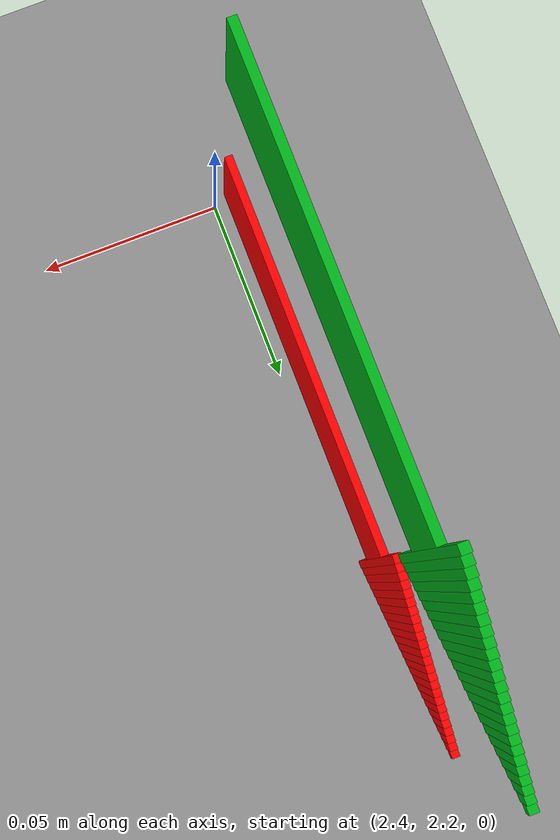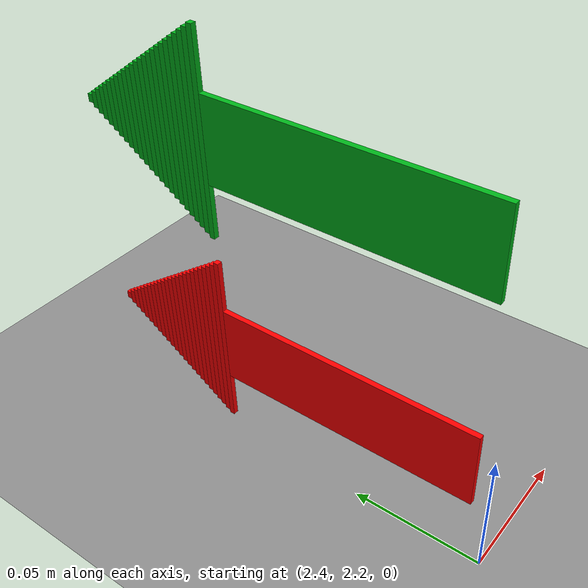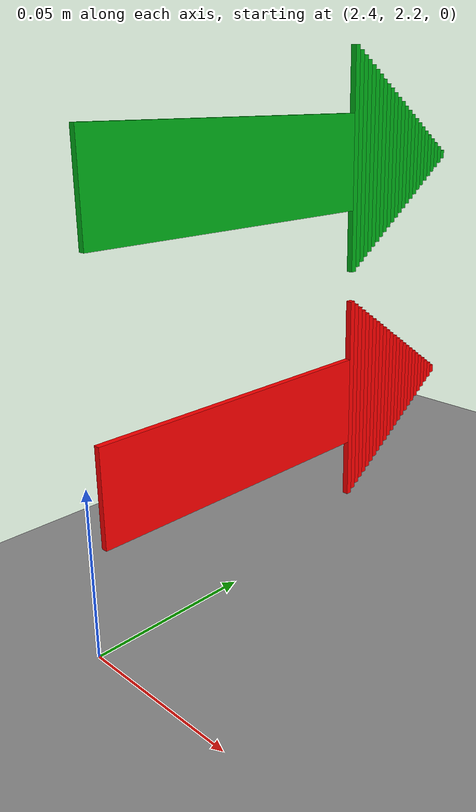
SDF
<sdf version="1.9">
 <world name="ros2_world">
  <model name="ground_plane">
   <static>true</static>
   <link name="link">
    <collision name="collision">
     <geometry><plane><normal>0 0 1</normal><size>30 30</size></plane></geometry>
    </collision>
    <visual name="visual">
     <geometry><plane><normal>0 0 1</normal><size>30 30</size></plane></geometry>
     <material><ambient>0.55 0.55 0.55 1</ambient><diffuse>0.55 0.55 0.55 1</diffuse></material>
    </visual>
   </link>
  </model>
  <model name="flechas">
   <static>true</static>
   <link name="flecha_8">
    <pose>2.3985 2.28 0.125 0 0 1.5708</pose>
    <visual name="p0">
     <pose>-0.025 0 0 0 0 0</pose>
     <geometry><box><size>0.1 0.002 0.03</size></box></geometry>
     <material><ambient>0 0.7 0.1 1</ambient><diffuse>0 0.7 0.1 1</diffuse></material>
    </visual>
    <visual name="p1">
     <pose>0.026 0 0 0 0 0</pose>
     <geometry><box><size>0.002 0.002 0.07</size></box></geometry>
     <material><ambient>0 0.7 0.1 1</ambient><diffuse>0 0.7 0.1 1</diffuse></material>
    </visual>
    <visual name="p2">
     <pose>0.028 0 0 0 0 0</pose>
     <geometry><box><size>0.002 0.002 0.0672</size></box></geometry>
     <material><ambient>0 0.7 0.1 1</ambient><diffuse>0 0.7 0.1 1</diffuse></material>
    </visual>
    <visual name="p3">
     <pose>0.03 0 0 0 0 0</pose>
     <geometry><box><size>0.002 0.002 0.0644</size></box></geometry>
     <material><ambient>0 0.7 0.1 1</ambient><diffuse>0 0.7 0.1 1</diffuse></material>
    </visual>
    <visual name="p4">
     <pose>0.032 0 0 0 0 0</pose>
     <geometry><box><size>0.002 0.002 0.0616</size></box></geometry>
     <material><ambient>0 0.7 0.1 1</ambient><diffuse>0 0.7 0.1 1</diffuse></material>
    </visual>
    <visual name="p5">
     <pose>0.034 0 0 0 0 0</pose>
     <geometry><box><size>0.002 0.002 0.0588</size></box></geometry>
     <material><ambient>0 0.7 0.1 1</ambient><diffuse>0 0.7 0.1 1</diffuse></material>
    </visual>
    <visual name="p6">
     <pose>0.036 0 0 0 0 0</pose>
     <geometry><box><size>0.002 0.002 0.056</size></box></geometry>
     <material><ambient>0 0.7 0.1 1</ambient><diffuse>0 0.7 0.1 1</diffuse></material>
    </visual>
    <visual name="p7">
     <pose>0.038 0 0 0 0 0</pose>
     <geometry><box><size>0.002 0.002 0.0532</size></box></geometry>
     <material><ambient>0 0.7 0.1 1</ambient><diffuse>0 0.7 0.1 1</diffuse></material>
    </visual>
    <visual name="p8">
     <pose>0.04 0 0 0 0 0</pose>
     <geometry><box><size>0.002 0.002 0.0504</size></box></geometry>
     <material><ambient>0 0.7 0.1 1</ambient><diffuse>0 0.7 0.1 1</diffuse></material>
    </visual>
    <visual name="p9">
     <pose>0.042 0 0 0 0 0</pose>
     <geometry><box><size>0.002 0.002 0.0476</size></box></geometry>
     <material><ambient>0 0.7 0.1 1</ambient><diffuse>0 0.7 0.1 1</diffuse></material>
    </visual>
    <visual name="p10">
     <pose>0.044 0 0 0 0 0</pose>
     <geometry><box><size>0.002 0.002 0.0448</size></box></geometry>
     <material><ambient>0 0.7 0.1 1</ambient><diffuse>0 0.7 0.1 1</diffuse></material>
    </visual>
    <visual name="p11">
     <pose>0.046 0 0 0 0 0</pose>
     <geometry><box><size>0.002 0.002 0.042</size></box></geometry>
     <material><ambient>0 0.7 0.1 1</ambient><diffuse>0 0.7 0.1 1</diffuse></material>
    </visual>
    <visual name="p12">
     <pose>0.048 0 0 0 0 0</pose>
     <geometry><box><size>0.002 0.002 0.0392</size></box></geometry>
     <material><ambient>0 0.7 0.1 1</ambient><diffuse>0 0.7 0.1 1</diffuse></material>
    </visual>
    <visual name="p13">
     <pose>0.05 0 0 0 0 0</pose>
     <geometry><box><size>0.002 0.002 0.0364</size></box></geometry>
     <material><ambient>0 0.7 0.1 1</ambient><diffuse>0 0.7 0.1 1</diffuse></material>
    </visual>
    <visual name="p14">
     <pose>0.052 0 0 0 0 0</pose>
     <geometry><box><size>0.002 0.002 0.0336</size></box></geometry>
     <material><ambient>0 0.7 0.1 1</ambient><diffuse>0 0.7 0.1 1</diffuse></material>
    </visual>
    <visual name="p15">
     <pose>0.054 0 0 0 0 0</pose>
     <geometry><box><size>0.002 0.002 0.0308</size></box></geometry>
     <material><ambient>0 0.7 0.1 1</ambient><diffuse>0 0.7 0.1 1</diffuse></material>
    </visual>
    <visual name="p16">
     <pose>0.056 0 0 0 0 0</pose>
     <geometry><box><size>0.002 0.002 0.028</size></box></geometry>
     <material><ambient>0 0.7 0.1 1</ambient><diffuse>0 0.7 0.1 1</diffuse></material>
    </visual>
    <visual name="p17">
     <pose>0.058 0 0 0 0 0</pose>
     <geometry><box><size>0.002 0.002 0.0252</size></box></geometry>
     <material><ambient>0 0.7 0.1 1</ambient><diffuse>0 0.7 0.1 1</diffuse></material>
    </visual>
    <visual name="p18">
     <pose>0.06 0 0 0 0 0</pose>
     <geometry><box><size>0.002 0.002 0.0224</size></box></geometry>
     <material><ambient>0 0.7 0.1 1</ambient><diffuse>0 0.7 0.1 1</diffuse></material>
    </visual>
    <visual name="p19">
     <pose>0.062 0 0 0 0 0</pose>
     <geometry><box><size>0.002 0.002 0.0196</size></box></geometry>
     <material><ambient>0 0.7 0.1 1</ambient><diffuse>0 0.7 0.1 1</diffuse></material>
    </visual>
    <visual name="p20">
     <pose>0.064 0 0 0 0 0</pose>
     <geometry><box><size>0.002 0.002 0.0168</size></box></geometry>
     <material><ambient>0 0.7 0.1 1</ambient><diffuse>0 0.7 0.1 1</diffuse></material>
    </visual>
    <visual name="p21">
     <pose>0.066 0 0 0 0 0</pose>
     <geometry><box><size>0.002 0.002 0.014</size></box></geometry>
     <material><ambient>0 0.7 0.1 1</ambient><diffuse>0 0.7 0.1 1</diffuse></material>
    </visual>
    <visual name="p22">
     <pose>0.068 0 0 0 0 0</pose>
     <geometry><box><size>0.002 0.002 0.0112</size></box></geometry>
     <material><ambient>0 0.7 0.1 1</ambient><diffuse>0 0.7 0.1 1</diffuse></material>
    </visual>
    <visual name="p23">
     <pose>0.07 0 0 0 0 0</pose>
     <geometry><box><size>0.002 0.002 0.0084</size></box></geometry>
     <material><ambient>0 0.7 0.1 1</ambient><diffuse>0 0.7 0.1 1</diffuse></material>
    </visual>
    <visual name="p24">
     <pose>0.072 0 0 0 0 0</pose>
     <geometry><box><size>0.002 0.002 0.0056</size></box></geometry>
     <material><ambient>0 0.7 0.1 1</ambient><diffuse>0 0.7 0.1 1</diffuse></material>
    </visual>
    <visual name="p25">
     <pose>0.074 0 0 0 0 0</pose>
     <geometry><box><size>0.002 0.002 0.0028</size></box></geometry>
     <material><ambient>0 0.7 0.1 1</ambient><diffuse>0 0.7 0.1 1</diffuse></material>
    </visual>
   </link>
   <link name="flecha_9">
    <pose>2.3985 2.28 0.045 0 0 1.5708</pose>
    <visual name="p0">
     <pose>-0.025 0 0 0 0 0</pose>
     <geometry><box><size>0.1 0.002 0.03</size></box></geometry>
     <material><ambient>1 0 0 1</ambient><diffuse>1 0 0 1</diffuse></material>
    </visual>
    <visual name="p1">
     <pose>0.026 0 0 0 0 0</pose>
     <geometry><box><size>0.002 0.002 0.07</size></box></geometry>
     <material><ambient>1 0 0 1</ambient><diffuse>1 0 0 1</diffuse></material>
    </visual>
    <visual name="p2">
     <pose>0.028 0 0 0 0 0</pose>
     <geometry><box><size>0.002 0.002 0.0672</size></box></geometry>
     <material><ambient>1 0 0 1</ambient><diffuse>1 0 0 1</diffuse></material>
    </visual>
    <visual name="p3">
     <pose>0.03 0 0 0 0 0</pose>
     <geometry><box><size>0.002 0.002 0.0644</size></box></geometry>
     <material><ambient>1 0 0 1</ambient><diffuse>1 0 0 1</diffuse></material>
    </visual>
    <visual name="p4">
     <pose>0.032 0 0 0 0 0</pose>
     <geometry><box><size>0.002 0.002 0.0616</size></box></geometry>
     <material><ambient>1 0 0 1</ambient><diffuse>1 0 0 1</diffuse></material>
    </visual>
    <visual name="p5">
     <pose>0.034 0 0 0 0 0</pose>
     <geometry><box><size>0.002 0.002 0.0588</size></box></geometry>
     <material><ambient>1 0 0 1</ambient><diffuse>1 0 0 1</diffuse></material>
    </visual>
    <visual name="p6">
     <pose>0.036 0 0 0 0 0</pose>
     <geometry><box><size>0.002 0.002 0.056</size></box></geometry>
     <material><ambient>1 0 0 1</ambient><diffuse>1 0 0 1</diffuse></material>
    </visual>
    <visual name="p7">
     <pose>0.038 0 0 0 0 0</pose>
     <geometry><box><size>0.002 0.002 0.0532</size></box></geometry>
     <material><ambient>1 0 0 1</ambient><diffuse>1 0 0 1</diffuse></material>
    </visual>
    <visual name="p8">
     <pose>0.04 0 0 0 0 0</pose>
     <geometry><box><size>0.002 0.002 0.0504</size></box></geometry>
     <material><ambient>1 0 0 1</ambient><diffuse>1 0 0 1</diffuse></material>
    </visual>
    <visual name="p9">
     <pose>0.042 0 0 0 0 0</pose>
     <geometry><box><size>0.002 0.002 0.0476</size></box></geometry>
     <material><ambient>1 0 0 1</ambient><diffuse>1 0 0 1</diffuse></material>
    </visual>
    <visual name="p10">
     <pose>0.044 0 0 0 0 0</pose>
     <geometry><box><size>0.002 0.002 0.0448</size></box></geometry>
     <material><ambient>1 0 0 1</ambient><diffuse>1 0 0 1</diffuse></material>
    </visual>
    <visual name="p11">
     <pose>0.046 0 0 0 0 0</pose>
     <geometry><box><size>0.002 0.002 0.042</size></box></geometry>
     <material><ambient>1 0 0 1</ambient><diffuse>1 0 0 1</diffuse></material>
    </visual>
    <visual name="p12">
     <pose>0.048 0 0 0 0 0</pose>
     <geometry><box><size>0.002 0.002 0.0392</size></box></geometry>
     <material><ambient>1 0 0 1</ambient><diffuse>1 0 0 1</diffuse></material>
    </visual>
    <visual name="p13">
     <pose>0.05 0 0 0 0 0</pose>
     <geometry><box><size>0.002 0.002 0.0364</size></box></geometry>
     <material><ambient>1 0 0 1</ambient><diffuse>1 0 0 1</diffuse></material>
    </visual>
    <visual name="p14">
     <pose>0.052 0 0 0 0 0</pose>
     <geometry><box><size>0.002 0.002 0.0336</size></box></geometry>
     <material><ambient>1 0 0 1</ambient><diffuse>1 0 0 1</diffuse></material>
    </visual>
    <visual name="p15">
     <pose>0.054 0 0 0 0 0</pose>
     <geometry><box><size>0.002 0.002 0.0308</size></box></geometry>
     <material><ambient>1 0 0 1</ambient><diffuse>1 0 0 1</diffuse></material>
    </visual>
    <visual name="p16">
     <pose>0.056 0 0 0 0 0</pose>
     <geometry><box><size>0.002 0.002 0.028</size></box></geometry>
     <material><ambient>1 0 0 1</ambient><diffuse>1 0 0 1</diffuse></material>
    </visual>
    <visual name="p17">
     <pose>0.058 0 0 0 0 0</pose>
     <geometry><box><size>0.002 0.002 0.0252</size></box></geometry>
     <material><ambient>1 0 0 1</ambient><diffuse>1 0 0 1</diffuse></material>
    </visual>
    <visual name="p18">
     <pose>0.06 0 0 0 0 0</pose>
     <geometry><box><size>0.002 0.002 0.0224</size></box></geometry>
     <material><ambient>1 0 0 1</ambient><diffuse>1 0 0 1</diffuse></material>
    </visual>
    <visual name="p19">
     <pose>0.062 0 0 0 0 0</pose>
     <geometry><box><size>0.002 0.002 0.0196</size></box></geometry>
     <material><ambient>1 0 0 1</ambient><diffuse>1 0 0 1</diffuse></material>
    </visual>
    <visual name="p20">
     <pose>0.064 0 0 0 0 0</pose>
     <geometry><box><size>0.002 0.002 0.0168</size></box></geometry>
     <material><ambient>1 0 0 1</ambient><diffuse>1 0 0 1</diffuse></material>
    </visual>
    <visual name="p21">
     <pose>0.066 0 0 0 0 0</pose>
     <geometry><box><size>0.002 0.002 0.014</size></box></geometry>
     <material><ambient>1 0 0 1</ambient><diffuse>1 0 0 1</diffuse></material>
    </visual>
    <visual name="p22">
     <pose>0.068 0 0 0 0 0</pose>
     <geometry><box><size>0.002 0.002 0.0112</size></box></geometry>
     <material><ambient>1 0 0 1</ambient><diffuse>1 0 0 1</diffuse></material>
    </visual>
    <visual name="p23">
     <pose>0.07 0 0 0 0 0</pose>
     <geometry><box><size>0.002 0.002 0.0084</size></box></geometry>
     <material><ambient>1 0 0 1</ambient><diffuse>1 0 0 1</diffuse></material>
    </visual>
    <visual name="p24">
     <pose>0.072 0 0 0 0 0</pose>
     <geometry><box><size>0.002 0.002 0.0056</size></box></geometry>
     <material><ambient>1 0 0 1</ambient><diffuse>1 0 0 1</diffuse></material>
    </visual>
    <visual name="p25">
     <pose>0.074 0 0 0 0 0</pose>
     <geometry><box><size>0.002 0.002 0.0028</size></box></geometry>
     <material><ambient>1 0 0 1</ambient><diffuse>1 0 0 1</diffuse></material>
    </visual>
   </link>
  </model>
 </world>
</sdf>
